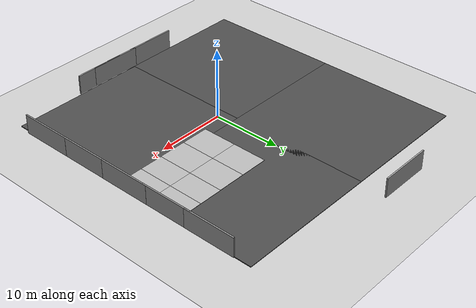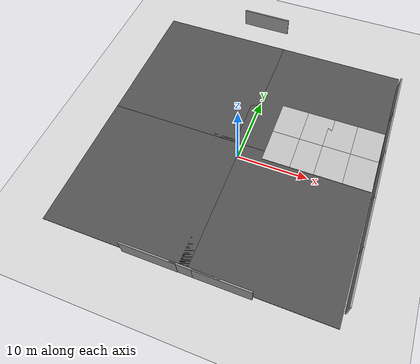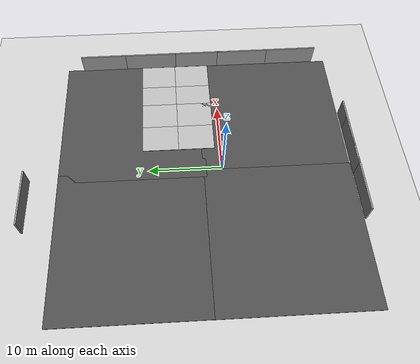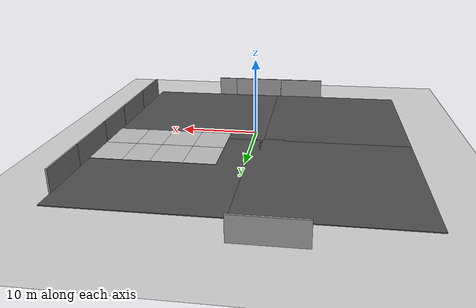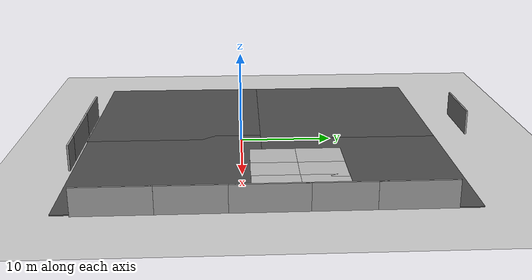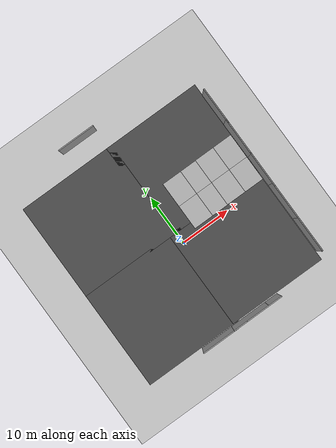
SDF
<sdf version="1.6">
 <world name="default">
  <model name="ground_plane">
   <static>1</static>
   <link name="link">
    <collision name="collision">
     <geometry><plane><normal>0 0 1</normal><size>100 100</size></plane></geometry>
     <surface><friction><ode><mu>100</mu><mu2>50</mu2></ode></friction></surface>
    </collision>
    <visual name="visual">
     <cast_shadows>0</cast_shadows>
     <geometry><plane><normal>0 0 1</normal><size>100 100</size></plane></geometry>
     <material>
      <script><uri>file://media/materials/scripts/gazebo.material</uri><name>Gazebo/Grey</name></script>
     </material>
    </visual>
   </link>
  </model>
  <model name="asphalt_plane">
   <static>1</static>
   <link name="link">
    <collision name="collision">
     <geometry><box><size>20 20 0.1</size></box></geometry>
     <surface><friction><ode><mu>100</mu><mu2>50</mu2></ode></friction></surface>
    </collision>
    <visual name="visual">
     <cast_shadows>0</cast_shadows>
     <geometry><box><size>20 20 0.1</size></box></geometry>
     <material>
      <script>
       <uri>model://asphalt_plane/materials/scripts</uri>
       <uri>model://asphalt_plane/materials/textures</uri>
       <name>vrc/asphalt</name>
      </script>
     </material>
    </visual>
   </link>
   <pose>-10.1692 -7.43707 0 0 -0 0</pose>
  </model>
  <model name="asphalt_plane_clone">
   <static>1</static>
   <link name="link">
    <collision name="collision">
     <geometry><box><size>20 20 0.1</size></box></geometry>
     <surface><friction><ode><mu>100</mu><mu2>50</mu2></ode></friction></surface>
    </collision>
    <visual name="visual">
     <cast_shadows>0</cast_shadows>
     <geometry><box><size>20 20 0.1</size></box></geometry>
     <material>
      <script>
       <uri>model://asphalt_plane/materials/scripts</uri>
       <uri>model://asphalt_plane/materials/textures</uri>
       <name>vrc/asphalt</name>
      </script>
     </material>
    </visual>
   </link>
   <pose>-10.1603 12.171 0 0 -0 0</pose>
  </model>
  <model name="asphalt_plane_clone_clone">
   <static>1</static>
   <link name="link">
    <collision name="collision">
     <geometry><box><size>20 20 0.1</size></box></geometry>
     <surface><friction><ode><mu>100</mu><mu2>50</mu2></ode></friction></surface>
    </collision>
    <visual name="visual">
     <cast_shadows>0</cast_shadows>
     <geometry><box><size>20 20 0.1</size></box></geometry>
     <material>
      <script>
       <uri>model://asphalt_plane/materials/scripts</uri>
       <uri>model://asphalt_plane/materials/textures</uri>
       <name>vrc/asphalt</name>
      </script>
     </material>
    </visual>
   </link>
   <pose>8.71597 12.1785 0 0 -0 0</pose>
  </model>
  <model name="asphalt_plane_clone_clone_0">
   <static>1</static>
   <link name="link">
    <collision name="collision">
     <geometry><box><size>20 20 0.1</size></box></geometry>
     <surface><friction><ode><mu>100</mu><mu2>50</mu2></ode></friction></surface>
    </collision>
    <visual name="visual">
     <cast_shadows>0</cast_shadows>
     <geometry><box><size>20 20 0.1</size></box></geometry>
     <material>
      <script>
       <uri>model://asphalt_plane/materials/scripts</uri>
       <uri>model://asphalt_plane/materials/textures</uri>
       <name>vrc/asphalt</name>
      </script>
     </material>
    </visual>
   </link>
   <pose>8.60996 -7.34898 0 0 -0 0</pose>
  </model>
  <model name="grey_wall">
   <static>1</static>
   <link name="link">
    <pose>0 0 1.4 0 -0 0</pose>
    <collision name="collision"><geometry><box><size>7.5 0.2 2.8</size></box></geometry></collision>
    <visual name="visual">
     <cast_shadows>0</cast_shadows>
     <geometry><box><size>7.5 0.2 2.8</size></box></geometry>
     <material>
      <script>
       <uri>model://grey_wall/materials/scripts</uri>
       <uri>model://grey_wall/materials/textures</uri>
       <name>vrc/grey_wall</name>
      </script>
     </material>
    </visual>
   </link>
   <pose>-4.8114 -17.6626 0 0 -0 0</pose>
  </model>
  <model name="grey_wall_clone">
   <static>1</static>
   <link name="link">
    <pose>0 0 1.4 0 -0 0</pose>
    <collision name="collision"><geometry><box><size>7.5 0.2 2.8</size></box></geometry></collision>
    <visual name="visual">
     <cast_shadows>0</cast_shadows>
     <geometry><box><size>7.5 0.2 2.8</size></box></geometry>
     <material>
      <script>
       <uri>model://grey_wall/materials/scripts</uri>
       <uri>model://grey_wall/materials/textures</uri>
       <name>vrc/grey_wall</name>
      </script>
     </material>
    </visual>
   </link>
   <pose>1.84642 -17.6367 0 0 -0 0</pose>
  </model>
  <model name="grey_wall_clone_0">
   <static>1</static>
   <link name="link">
    <pose>0 0 1.4 0 -0 0</pose>
    <collision name="collision"><geometry><box><size>7.5 0.2 2.8</size></box></geometry></collision>
    <visual name="visual">
     <cast_shadows>0</cast_shadows>
     <geometry><box><size>7.5 0.2 2.8</size></box></geometry>
     <material>
      <script>
       <uri>model://grey_wall/materials/scripts</uri>
       <uri>model://grey_wall/materials/textures</uri>
       <name>vrc/grey_wall</name>
      </script>
     </material>
    </visual>
   </link>
   <pose>4.62088 -17.6372 0 0 -0 0</pose>
  </model>
  <model name="grey_wall_clone_clone">
   <static>1</static>
   <link name="link">
    <pose>0 0 1.4 0 -0 0</pose>
    <collision name="collision"><geometry><box><size>7.5 0.2 2.8</size></box></geometry></collision>
    <visual name="visual">
     <cast_shadows>0</cast_shadows>
     <geometry><box><size>7.5 0.2 2.8</size></box></geometry>
     <material>
      <script>
       <uri>model://grey_wall/materials/scripts</uri>
       <uri>model://grey_wall/materials/textures</uri>
       <name>vrc/grey_wall</name>
      </script>
     </material>
    </visual>
   </link>
   <pose>-4.48764 26.0166 0 0 -0 0</pose>
  </model>
  <model name="grey_wall_clone_clone_clone">
   <static>1</static>
   <link name="link">
    <pose>0 0 1.4 0 -0 0</pose>
    <collision name="collision"><geometry><box><size>7.5 0.2 2.8</size></box></geometry></collision>
    <visual name="visual">
     <cast_shadows>0</cast_shadows>
     <geometry><box><size>7.5 0.2 2.8</size></box></geometry>
     <material>
      <script>
       <uri>model://grey_wall/materials/scripts</uri>
       <uri>model://grey_wall/materials/textures</uri>
       <name>vrc/grey_wall</name>
      </script>
     </material>
    </visual>
   </link>
   <pose>18.7544 16.0387 0 0 0 -1.56734</pose>
  </model>
  <model name="grey_wall_clone_clone_clone_clone">
   <static>1</static>
   <link name="link">
    <pose>0 0 1.4 0 -0 0</pose>
    <collision name="collision"><geometry><box><size>7.5 0.2 2.8</size></box></geometry></collision>
    <visual name="visual">
     <cast_shadows>0</cast_shadows>
     <geometry><box><size>7.5 0.2 2.8</size></box></geometry>
     <material>
      <script>
       <uri>model://grey_wall/materials/scripts</uri>
       <uri>model://grey_wall/materials/textures</uri>
       <name>vrc/grey_wall</name>
      </script>
     </material>
    </visual>
   </link>
   <pose>18.767 9.41754 0 0 0 -1.56734</pose>
  </model>
  <model name="grey_wall_clone_clone_clone_clone_0">
   <static>1</static>
   <link name="link">
    <pose>0 0 1.4 0 -0 0</pose>
    <collision name="collision"><geometry><box><size>7.5 0.2 2.8</size></box></geometry></collision>
    <visual name="visual">
     <cast_shadows>0</cast_shadows>
     <geometry><box><size>7.5 0.2 2.8</size></box></geometry>
     <material>
      <script>
       <uri>model://grey_wall/materials/scripts</uri>
       <uri>model://grey_wall/materials/textures</uri>
       <name>vrc/grey_wall</name>
      </script>
     </material>
    </visual>
   </link>
   <pose>18.7963 2.45369 0 0 0 -1.56734</pose>
  </model>
  <model name="grey_wall_clone_clone_clone_clone_1">
   <static>1</static>
   <link name="link">
    <pose>0 0 1.4 0 -0 0</pose>
    <collision name="collision"><geometry><box><size>7.5 0.2 2.8</size></box></geometry></collision>
    <visual name="visual">
     <cast_shadows>0</cast_shadows>
     <geometry><box><size>7.5 0.2 2.8</size></box></geometry>
     <material>
      <script>
       <uri>model://grey_wall/materials/scripts</uri>
       <uri>model://grey_wall/materials/textures</uri>
       <name>vrc/grey_wall</name>
      </script>
     </material>
    </visual>
   </link>
   <pose>18.8058 -4.41342 0 0 0 -1.56734</pose>
  </model>
  <model name="grey_wall_clone_clone_clone_clone_2">
   <static>1</static>
   <link name="link">
    <pose>0 0 1.4 0 -0 0</pose>
    <collision name="collision"><geometry><box><size>7.5 0.2 2.8</size></box></geometry></collision>
    <visual name="visual">
     <cast_shadows>0</cast_shadows>
     <geometry><box><size>7.5 0.2 2.8</size></box></geometry>
     <material>
      <script>
       <uri>model://grey_wall/materials/scripts</uri>
       <uri>model://grey_wall/materials/textures</uri>
       <name>vrc/grey_wall</name>
      </script>
     </material>
    </visual>
   </link>
   <pose>18.8343 -11.7301 0 0 0 -1.56734</pose>
  </model>
  <model name="mud_box">
   <static>1</static>
   <link name="link">
    <collision name="collision"><geometry><box><size>8 10 0.2</size></box></geometry></collision>
    <visual name="visual_1">
     <pose>-2 2.5 0 0 -0 0</pose>
     <cast_shadows>0</cast_shadows>
     <geometry><box><size>4 5 0.2</size></box></geometry>
     <material>
      <script>
       <uri>model://mud_box/materials/scripts</uri>
       <uri>model://mud_box/materials/textures</uri>
       <name>vrc/mud</name>
      </script>
     </material>
    </visual>
    <visual name="visual_2">
     <pose>2 2.5 0 0 -0 0</pose>
     <cast_shadows>0</cast_shadows>
     <geometry><box><size>4 5 0.2</size></box></geometry>
     <material>
      <script>
       <uri>model://mud_box/materials/scripts</uri>
       <uri>model://mud_box/materials/textures</uri>
       <name>vrc/mud</name>
      </script>
     </material>
    </visual>
    <visual name="visual_3">
     <pose>2 -2.5 0 0 -0 0</pose>
     <cast_shadows>0</cast_shadows>
     <geometry><box><size>4 5 0.2</size></box></geometry>
     <material>
      <script>
       <uri>model://mud_box/materials/scripts</uri>
       <uri>model://mud_box/materials/textures</uri>
       <name>vrc/mud</name>
      </script>
     </material>
    </visual>
    <visual name="visual_4">
     <pose>-2 -2.5 0 0 -0 0</pose>
     <cast_shadows>0</cast_shadows>
     <geometry><box><size>4 5 0.2</size></box></geometry>
     <material>
      <script>
       <uri>model://mud_box/materials/scripts</uri>
       <uri>model://mud_box/materials/textures</uri>
       <name>vrc/mud</name>
      </script>
     </material>
    </visual>
   </link>
   <pose>14.6137 5.86275 0 0 -0 0</pose>
  </model>
  <model name="mud_box_clone">
   <static>1</static>
   <link name="link">
    <collision name="collision"><geometry><box><size>8 10 0.2</size></box></geometry></collision>
    <visual name="visual_1">
     <pose>-2 2.5 0 0 -0 0</pose>
     <cast_shadows>0</cast_shadows>
     <geometry><box><size>4 5 0.2</size></box></geometry>
     <material>
      <script>
       <uri>model://mud_box/materials/scripts</uri>
       <uri>model://mud_box/materials/textures</uri>
       <name>vrc/mud</name>
      </script>
     </material>
    </visual>
    <visual name="visual_2">
     <pose>2 2.5 0 0 -0 0</pose>
     <cast_shadows>0</cast_shadows>
     <geometry><box><size>4 5 0.2</size></box></geometry>
     <material>
      <script>
       <uri>model://mud_box/materials/scripts</uri>
       <uri>model://mud_box/materials/textures</uri>
       <name>vrc/mud</name>
      </script>
     </material>
    </visual>
    <visual name="visual_3">
     <pose>2 -2.5 0 0 -0 0</pose>
     <cast_shadows>0</cast_shadows>
     <geometry><box><size>4 5 0.2</size></box></geometry>
     <material>
      <script>
       <uri>model://mud_box/materials/scripts</uri>
       <uri>model://mud_box/materials/textures</uri>
       <name>vrc/mud</name>
      </script>
     </material>
    </visual>
    <visual name="visual_4">
     <pose>-2 -2.5 0 0 -0 0</pose>
     <cast_shadows>0</cast_shadows>
     <geometry><box><size>4 5 0.2</size></box></geometry>
     <material>
      <script>
       <uri>model://mud_box/materials/scripts</uri>
       <uri>model://mud_box/materials/textures</uri>
       <name>vrc/mud</name>
      </script>
     </material>
    </visual>
   </link>
   <pose>7.23773 5.83307 0 0 -0 0</pose>
  </model>
  <light name="sun" type="directional">
   <pose>0 0 10 0 -0 0</pose>
   <diffuse>0.8 0.8 0.8 1</diffuse>
   <specular>0.2 0.2 0.2 1</specular>
   <attenuation>
    <range>1000</range>
    <constant>0.9</constant>
    <linear>0.01</linear>
    <quadratic>0.001</quadratic>
   </attenuation>
   <direction>-0.5 0.1 -0.9</direction>
  </light>
  <gravity>0 0 -9.8</gravity>
  <magnetic_field>6e-06 2.3e-05 -4.2e-05</magnetic_field>
  <atmosphere type="adiabatic"/>
  <physics name="default_physics" default="0" type="ode">
   <max_step_size>0.001</max_step_size>
   <real_time_factor>1</real_time_factor>
   <real_time_update_rate>1000</real_time_update_rate>
  </physics>
  <scene><ambient>0.4 0.4 0.4 1</ambient><background>0.7 0.7 0.7 1</background><shadows>1</shadows></scene>
  <audio><device>default</device></audio>
  <spherical_coordinates>
   <surface_model>EARTH_WGS84</surface_model>
   <latitude_deg>47.840640</latitude_deg>
   <longitude_deg>10.619944</longitude_deg>
   <elevation>740.0</elevation>
   <heading_deg>180</heading_deg>
  </spherical_coordinates>
  <include><uri>model://polybot_description</uri></include>
 </world>
</sdf>

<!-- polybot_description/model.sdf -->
<sdf version='1.4'>
  <model name="polybot">
  <static>false</static>

  <!-- *********************** MAIN BODY **************************  -->

  <link name='base_link'>
    <pose>0 0 0.0 0 0 0</pose>
    <collision name='base_link_collision'>
      <geometry>
        <box>
          <size>0.5 0.3 0.1</size>
        </box>
      </geometry>
    </collision>

    <visual name='base_link_visual'>
      <geometry>
        <box>
          <size>0.5 0.3 0.1</size>
        </box>
      </geometry>
    </visual>

    <!-- *********************** CASTER WHEEL **************************  -->

    <collision name='caster_collision'>
      <pose>0.165 0 -0.07 0 0 0</pose>
        <geometry>
          <sphere>
            <radius>0.075</radius>
          </sphere>
        </geometry>

        <surface>
          <friction>
            <ode>
              <mu>0</mu>
              <mu2>0</mu2>
              <slip1>1.0</slip1>
              <slip2>1.0</slip2>
            </ode>
          </friction>
        </surface>
      </collision>

      <visual name='caster_visual'>
        <pose>0.165 0 -0.07 0 0 0</pose>
        <geometry>
          <sphere>
            <radius>0.075</radius>
          </sphere>
        </geometry>
      </visual>

  </link>

  <!-- *********************** WHEEL LEFT **************************  -->

  <link name='wheel_left'>
    <pose>-0.08 -0.18 0 0 1.5707 1.5707</pose>
    <collision name='collision'>
      <geometry>
        <cylinder>
          <radius>0.1</radius>
          <length>0.02</length>
        </cylinder>
      </geometry>
    </collision>

    <visual name='visual'>
      <geometry>
        <cylinder>
          <radius>0.1</radius>
          <length>0.02</length>
        </cylinder>
      </geometry>
    </visual>
  </link>

  <!-- *********************** WHEEL RIGHT **************************  -->

  <link name='wheel_right'>
    <pose>-0.08 0.18 0.255 0 1.5707 1.5707</pose>
    <collision name='collision'>
      <geometry>
        <cylinder>
          <radius>0.1</radius>
          <length>0.02</length>
        </cylinder>
      </geometry>
    </collision>

    <visual name='visual'>
      <geometry>
        <cylinder>
          <radius>0.1</radius>
          <length>0.02</length>
        </cylinder>
      </geometry>
    </visual>
  </link>

  <!-- *********************** JOINT LEFT **************************  -->

  <joint type="revolute" name="left_wheel_hinge">
    <pose>0 0 0 0 0 0</pose>
    <child>wheel_left</child>
    <parent>base_link</parent>
    <axis>
      <xyz>0 1 0</xyz>
    </axis>
  </joint>

  <!-- *********************** JOINT RIGHT **************************  -->

  <joint type='revolute' name='right_wheel_hinge'>
    <pose>0 0 0 0 0 0</pose>
    <child>wheel_right</child>
    <parent>base_link</parent>
    <axis>
      <xyz>0 1 0</xyz>
    </axis>
  </joint>

  <!-- *********************** IMU SENSOR SETUP **************************  -->

  <link name="imu_link">
    <gravity>true</gravity>
    <sensor name="bmb_imu" type="imu">
      <always_on>true</always_on>
      <update_rate>100</update_rate>
      <visualize>true</visualize>
      <imu>
        <orientation>
          <x>
            <noise type="gaussian">
              <mean>0.0</mean>
              <stddev>2e-3</stddev>
            </noise>
          </x>
          <y>
            <noise type="gaussian">
              <mean>0.0</mean>
              <stddev>2e-3</stddev>
            </noise>
          </y>
          <z>
            <noise type="gaussian">
              <mean>0.0</mean>
              <stddev>2e-3</stddev>
            </noise>
          </z>
        </orientation>
        <angular_velocity>
          <x>
            <noise type="gaussian">
              <mean>0.0</mean>
              <stddev>2e-4</stddev>
            </noise>
          </x>
          <y>
            <noise type="gaussian">
              <mean>0.0</mean>
              <stddev>2e-4</stddev>
            </noise>
          </y>
          <z>
            <noise type="gaussian">
              <mean>0.0</mean>
              <stddev>2e-4</stddev>
            </noise>
          </z>
        </angular_velocity>
        <linear_acceleration>
          <x>
            <noise type="gaussian">
              <mean>0.0</mean>
              <stddev>1.7e-2</stddev>
            </noise>
          </x>
          <y>
            <noise type="gaussian">
              <mean>0.0</mean>
              <stddev>1.7e-2</stddev>
            </noise>
          </y>
          <z>
            <noise type="gaussian">
              <mean>0.0</mean>
              <stddev>1.7e-2</stddev>
            </noise>
          </z>
        </linear_acceleration>
      </imu>
      <plugin name="polybot_imu" filename="libgazebo_ros_imu_sensor.so">
        <initial_orientation_as_reference>false</initial_orientation_as_reference>
        <frame_name>imu_link</frame_name>
        <ros>
          <namespace>/imu</namespace>
          <remapping>~/out:=data</remapping>
        </ros>
      </plugin>
    </sensor>
  </link>

  <!-- *********************** GPS SETUP *********************************  -->

  <link name="gps_link">
    <sensor name="bmb_gps" type="gps">
      <always_on>true</always_on>
      <update_rate>10.0</update_rate>
      <gps>
        <position_sensing>
          <horizontal>
            <noise type="gaussian">
              <mean>0.0</mean>
              <stddev>1e-2</stddev>
            </noise>
          </horizontal>
          <vertical>
            <noise type="gaussian">
              <mean>0.0</mean>
              <stddev>1</stddev>
            </noise>
          </vertical>
        </position_sensing>
      </gps>
      <plugin name="polybot_gps" filename="libgazebo_ros_gps_sensor.so">
        <ros>
          <remapping>~/out:=gps/fix</remapping>
        </ros>
      </plugin>
    </sensor>
  </link>

  <!-- *********************** LIDAR SETUP *********************************  -->

  <link name="lidar_link">
  <inertial>
    <pose>0.215 0 0.13 0 0 0</pose>
    <inertia>
      <ixx>0.001</ixx>
      <ixy>0.000</ixy>
      <ixz>0.000</ixz>
      <iyy>0.001</iyy>
      <iyz>0.000</iyz>
      <izz>0.001</izz>
    </inertia>
    <mass>0.114</mass>
  </inertial>

  <collision name="lidar_collision">
    <pose>0.215 0 0.13 0 0 0</pose>
    <geometry>
      <cylinder>
        <radius>0.0508</radius>
        <length>0.18</length>
      </cylinder>
    </geometry>
  </collision>

  <visual name="lidar_visual">
    <pose>0.215 0 0.13 0 0 0</pose>
    <geometry>
      <cylinder>
        <radius>0.0508</radius>
        <length>0.18</length>
      </cylinder>
    </geometry>
    <material>
      <ambient>0.0 0.0 0.0 1.0</ambient>
      <diffuse>0.0 0.0 0.0 1.0</diffuse>
      <specular>0.0 0.0 0.0 1.0</specular>
      <emissive>0.0 0.0 0.0 1.0</emissive>
    </material>
  </visual>

  <sensor name="lidar" type="ray">
    <pose>0.215 0 0.215 0 0 0</pose>
    <always_on>true</always_on>
    <visualize>true</visualize>
    <update_rate>5</update_rate>
    <ray>
      <scan>
        <horizontal>
          <samples>360</samples>
          <resolution>1.00000</resolution>
          <min_angle>0.000000</min_angle>
          <max_angle>6.280000</max_angle>
        </horizontal>
      </scan>
      <range>
        <min>0.120000</min>
        <max>3.5</max>
        <resolution>0.015000</resolution>
      </range>
      <noise>
        <type>gaussian</type>
        <mean>0.0</mean>
        <stddev>0.01</stddev>
      </noise>
    </ray>
    <plugin name="scan" filename="libgazebo_ros_ray_sensor.so">
      <ros>
        <remapping>~/out:=scan</remapping>
      </ros>
      <output_type>sensor_msgs/LaserScan</output_type>
      <frame_name>lidar_link</frame_name>
    </plugin>
  </sensor>
  </link>

  <!-- *********************** WHEEL ODOMETRY ***************************    -->

  <plugin name="polybot_diff_drive" filename="libgazebo_ros_diff_drive.so">

    <update_rate>30</update_rate>

    <!-- wheels -->
    <left_joint>left_wheel_hinge</left_joint>
    <right_joint>right_wheel_hinge</right_joint>

    <!-- kinematics -->
    <wheel_separation>0.52</wheel_separation>
    <wheel_diameter>0.28</wheel_diameter>

    <!-- limits -->
    <max_wheel_torque>20</max_wheel_torque>
    <max_wheel_acceleration>1.0</max_wheel_acceleration>

    <!-- Receive velocity commands on this ROS topic -->
    <command_topic>cmd_vel</command_topic>

    <!-- output -->
    <!-- When false, publish no wheel odometry data to a ROS topic -->
    <publish_odom>true</publish_odom>

    <!-- When true, publish coordinate transform from odom to base_footprint -->
    <!-- I usually use the robot_localization package to publish this transform -->
    <publish_odom_tf>false</publish_odom_tf>

    <!-- When true, publish coordinate transform from base_link to the wheels -->
    <!-- The robot_state_publisher package is often used to publish this transform -->
    <publish_wheel_tf>false</publish_wheel_tf>

    <odometry_topic>odom</odometry_topic>
    <odometry_frame>odom</odometry_frame>
    <robot_base_frame>base_footprint</robot_base_frame>

    <!-- Odometry source, 0 for ENCODER, 1 for WORLD, defaults to WORLD -->
    <odometry_source>0</odometry_source>

    <!-- Change the ROS topic we will publish the odometry data to -->
    <ros>
      <remapping>odom:=wheel/odometry</remapping>
    </ros>

  </plugin>

  <!-- *********************** JOINT STATE PUBLISHER *********************   -->

  <plugin name="polybot_joint_state" filename="libgazebo_ros_joint_state_publisher.so">
    <ros>
      <remapping>~/out:=joint_states</remapping>
    </ros>
    <update_rate>30</update_rate>
    <joint_name>left_wheel_hinge</joint_name>
    <joint_name>right_wheel_hinge</joint_name>
  </plugin>
  </model>
</sdf>
